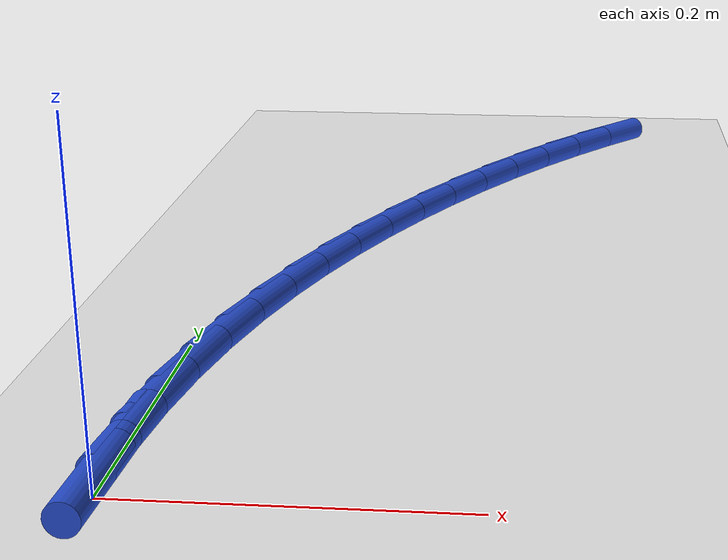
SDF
<sdf version="1.6">
 <world name="default">
  <model name="ground_plane">
   <static>1</static>
   <link name="link">
    <collision name="collision">
     <geometry><plane><normal>0 0 1</normal><size>100 100</size></plane></geometry>
     <surface><friction><ode><mu>100</mu><mu2>50</mu2></ode></friction></surface>
    </collision>
    <visual name="visual">
     <cast_shadows>0</cast_shadows>
     <geometry><plane><normal>0 0 1</normal><size>100 100</size></plane></geometry>
     <material>
      <script><uri>file://media/materials/scripts/gazebo.material</uri><name>Gazebo/WhiteGlow</name></script>
     </material>
    </visual>
   </link>
  </model>
  <model name="line">
   <link name="link_1">
    <pose>0.0018194349702626465 0.049755454146792215 0.01 0 1.57 1.483602633361678</pose>
    <collision name="collision">
     <geometry><cylinder><radius>0.01</radius><length>0.08</length></cylinder></geometry>
    </collision>
    <visual name="visual">
     <material>
      <script><name>Gazebo/Blue</name><uri>file://media/materials/scripts/gazebo.material</uri></script>
     </material>
     <geometry><cylinder><radius>0.01</radius><length>0.08</length></cylinder></geometry>
    </visual>
   </link>
   <link name="link_2">
    <pose>0.006136728174320169 0.0991437344091996 0.01 0 1.57 1.4345923530516969</pose>
    <collision name="collision">
     <geometry><cylinder><radius>0.01</radius><length>0.08</length></cylinder></geometry>
    </collision>
    <visual name="visual">
     <material>
      <script><name>Gazebo/Blue</name><uri>file://media/materials/scripts/gazebo.material</uri></script>
     </material>
     <geometry><cylinder><radius>0.01</radius><length>0.08</length></cylinder></geometry>
    </visual>
   </link>
   <link name="link_3">
    <pose>0.012848926189753597 0.14811910012295137 0.01 0 1.57 1.3872954782884424</pose>
    <collision name="collision">
     <geometry><cylinder><radius>0.01</radius><length>0.08</length></cylinder></geometry>
    </collision>
    <visual name="visual">
     <material>
      <script><name>Gazebo/Blue</name><uri>file://media/materials/scripts/gazebo.material</uri></script>
     </material>
     <geometry><cylinder><radius>0.01</radius><length>0.08</length></cylinder></geometry>
    </visual>
   </link>
   <link name="link_4">
    <pose>0.021853075594143977 0.1966358106237768 0.01 0 1.57 1.341756516457929</pose>
    <collision name="collision">
     <geometry><cylinder><radius>0.01</radius><length>0.08</length></cylinder></geometry>
    </collision>
    <visual name="visual">
     <material>
      <script><name>Gazebo/Blue</name><uri>file://media/materials/scripts/gazebo.material</uri></script>
     </material>
     <geometry><cylinder><radius>0.01</radius><length>0.08</length></cylinder></geometry>
    </visual>
   </link>
   <link name="link_5">
    <pose>0.03304622296507237 0.2446481252474054 0.01 0 1.57 1.2979872696164079</pose>
    <collision name="collision">
     <geometry><cylinder><radius>0.01</radius><length>0.08</length></cylinder></geometry>
    </collision>
    <visual name="visual">
     <material>
      <script><name>Gazebo/Blue</name><uri>file://media/materials/scripts/gazebo.material</uri></script>
     </material>
     <geometry><cylinder><radius>0.01</radius><length>0.08</length></cylinder></geometry>
    </visual>
   </link>
   <link name="link_6">
    <pose>0.04632541488011981 0.29211030332956645 0.01 0 1.57 1.2559713870289138</pose>
    <collision name="collision">
     <geometry><cylinder><radius>0.01</radius><length>0.08</length></cylinder></geometry>
    </collision>
    <visual name="visual">
     <material>
      <script><name>Gazebo/Blue</name><uri>file://media/materials/scripts/gazebo.material</uri></script>
     </material>
     <geometry><cylinder><radius>0.01</radius><length>0.08</length></cylinder></geometry>
    </visual>
   </link>
   <link name="link_7">
    <pose>0.06158769791686734 0.3389766042059892 0.01 0 1.57 1.215669023698207</pose>
    <collision name="collision">
     <geometry><cylinder><radius>0.01</radius><length>0.08</length></cylinder></geometry>
    </collision>
    <visual name="visual">
     <material>
      <script><name>Gazebo/Blue</name><uri>file://media/materials/scripts/gazebo.material</uri></script>
     </material>
     <geometry><cylinder><radius>0.01</radius><length>0.08</length></cylinder></geometry>
    </visual>
   </link>
   <link name="link_8">
    <pose>0.07873011865289604 0.3852012872124031 0.01 0 1.57 1.17702129964449</pose>
    <collision name="collision">
     <geometry><cylinder><radius>0.01</radius><length>0.08</length></cylinder></geometry>
    </collision>
    <visual name="visual">
     <material>
      <script><name>Gazebo/Blue</name><uri>file://media/materials/scripts/gazebo.material</uri></script>
     </material>
     <geometry><cylinder><radius>0.01</radius><length>0.08</length></cylinder></geometry>
    </visual>
   </link>
   <link name="link_9">
    <pose>0.09764972366578695 0.4307386116845375 0.01 0 1.57 1.1397223946646875</pose>
    <collision name="collision">
     <geometry><cylinder><radius>0.01</radius><length>0.08</length></cylinder></geometry>
    </collision>
    <visual name="visual">
     <material>
      <script><name>Gazebo/Blue</name><uri>file://media/materials/scripts/gazebo.material</uri></script>
     </material>
     <geometry><cylinder><radius>0.01</radius><length>0.08</length></cylinder></geometry>
    </visual>
   </link>
   <link name="link_10">
    <pose>0.11825523203445562 0.47554084261589774 0.01 0 1.57 1.1025616992202147</pose>
    <collision name="collision">
     <geometry><cylinder><radius>0.01</radius><length>0.08</length></cylinder></geometry>
    </collision>
    <visual name="visual">
     <material>
      <script><name>Gazebo/Blue</name><uri>file://media/materials/scripts/gazebo.material</uri></script>
     </material>
     <geometry><cylinder><radius>0.01</radius><length>0.08</length></cylinder></geometry>
    </visual>
   </link>
   <link name="link_11">
    <pose>0.1405129374051986 0.519550407914736 0.01 0 1.57 1.0651474809801442</pose>
    <collision name="collision">
     <geometry><cylinder><radius>0.01</radius><length>0.08</length></cylinder></geometry>
    </collision>
    <visual name="visual">
     <material>
      <script><name>Gazebo/Blue</name><uri>file://media/materials/scripts/gazebo.material</uri></script>
     </material>
     <geometry><cylinder><radius>0.01</radius><length>0.08</length></cylinder></geometry>
    </visual>
   </link>
   <link name="link_12">
    <pose>0.16440685423022963 0.562706707744824 0.01 0 1.57 1.027445736495339</pose>
    <collision name="collision">
     <geometry><cylinder><radius>0.01</radius><length>0.08</length></cylinder></geometry>
    </collision>
    <visual name="visual">
     <material>
      <script><name>Gazebo/Blue</name><uri>file://media/materials/scripts/gazebo.material</uri></script>
     </material>
     <geometry><cylinder><radius>0.01</radius><length>0.08</length></cylinder></geometry>
    </visual>
   </link>
   <link name="link_13">
    <pose>0.18992100186058716 0.6049491414329298 0.01 0 1.57 0.9894254827330592</pose>
    <collision name="collision">
     <geometry><cylinder><radius>0.01</radius><length>0.08</length></cylinder></geometry>
    </collision>
    <visual name="visual">
     <material>
      <script><name>Gazebo/Blue</name><uri>file://media/materials/scripts/gazebo.material</uri></script>
     </material>
     <geometry><cylinder><radius>0.01</radius><length>0.08</length></cylinder></geometry>
    </visual>
   </link>
   <link name="link_14">
    <pose>0.21703939964730976 0.6462171083058211 0.01 0 1.57 0.951059174953108</pose>
    <collision name="collision">
     <geometry><cylinder><radius>0.01</radius><length>0.08</length></cylinder></geometry>
    </collision>
    <visual name="visual">
     <material>
      <script><name>Gazebo/Blue</name><uri>file://media/materials/scripts/gazebo.material</uri></script>
     </material>
     <geometry><cylinder><radius>0.01</radius><length>0.08</length></cylinder></geometry>
    </visual>
   </link>
   <link name="link_15">
    <pose>0.24574606694143597 0.686450007690266 0.01 0 1.57 0.9123232419840897</pose>
    <collision name="collision">
     <geometry><cylinder><radius>0.01</radius><length>0.08</length></cylinder></geometry>
    </collision>
    <visual name="visual">
     <material>
      <script><name>Gazebo/Blue</name><uri>file://media/materials/scripts/gazebo.material</uri></script>
     </material>
     <geometry><cylinder><radius>0.01</radius><length>0.08</length></cylinder></geometry>
    </visual>
   </link>
   <link name="link_16">
    <pose>0.27602502309400434 0.7255872389130321 0.01 0 1.57 0.8731986354613531</pose>
    <collision name="collision">
     <geometry><cylinder><radius>0.01</radius><length>0.08</length></cylinder></geometry>
    </collision>
    <visual name="visual">
     <material>
      <script><name>Gazebo/Blue</name><uri>file://media/materials/scripts/gazebo.material</uri></script>
     </material>
     <geometry><cylinder><radius>0.01</radius><length>0.08</length></cylinder></geometry>
    </visual>
   </link>
   <link name="link_140">
    <pose>-2.6020852139652106e-17 -1.5265566588595902e-16 0.01 0 1.57 1.5337915929982469</pose>
    <collision name="collision">
     <geometry><cylinder><radius>0.01</radius><length>0.08</length></cylinder></geometry>
    </collision>
    <visual name="visual">
     <material>
      <script><name>Gazebo/Blue</name><uri>file://media/materials/scripts/gazebo.material</uri></script>
     </material>
     <geometry><cylinder><radius>0.01</radius><length>0.08</length></cylinder></geometry>
    </visual>
   </link>
   <link name="link_141">
    <pose>0.001840716140723033 0.049720013635048965 0.01 0 1.57 1.533791592998247</pose>
    <collision name="collision">
     <geometry><cylinder><radius>0.01</radius><length>0.08</length></cylinder></geometry>
    </collision>
    <visual name="visual">
     <material>
      <script><name>Gazebo/Blue</name><uri>file://media/materials/scripts/gazebo.material</uri></script>
     </material>
     <geometry><cylinder><radius>0.01</radius><length>0.08</length></cylinder></geometry>
    </visual>
   </link>
  </model>
 </world>
</sdf>
